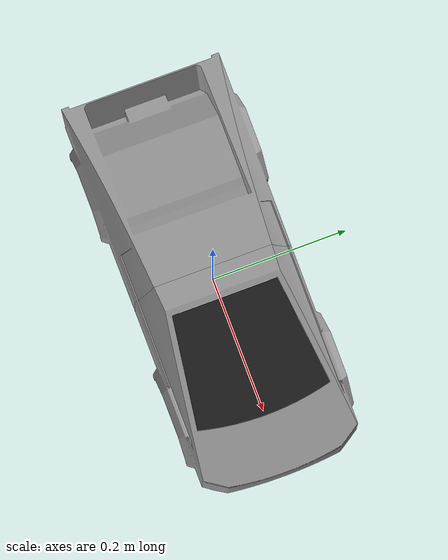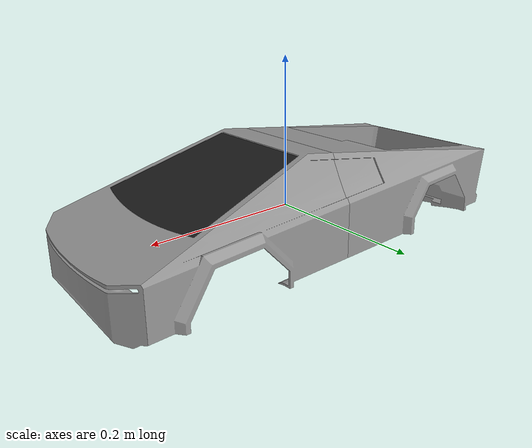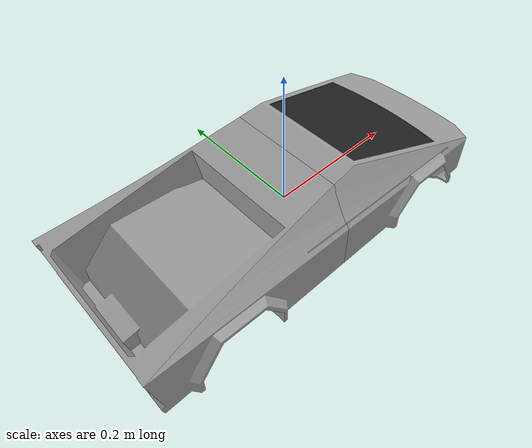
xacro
<?xml version="1.0"?>
<robot xmlns:xacro="http://www.ros.org/wiki/xacro">
     <!--
    comprimento 597.271 mm
    altura 138.91590 mm
    largura 250.382 mm
     -->

    <!-- Main body -->
    <link name="link_body">
        <!-- Body Front -->
        <visual>
            <geometry>
                <mesh filename="package://robot_description/meshes/body_front.stl" scale="1.0 1.0 1.0"/>
            </geometry>
            <material name="Grey"/>
        </visual>

        <!-- Body Rear -->
        <visual>
            <geometry>
                <mesh filename="package://robot_description/meshes/body_rear.stl" scale="1.0 1.0 1.0"/>
            </geometry>
            <material name="Grey"/>
        </visual>

        <!-- Body Window -->
        <visual>
            <geometry>
                <mesh filename="package://robot_description/meshes/body_front_window.stl" scale="1.0 1.0 1.0"/>
            </geometry>
            <material name="Black"/>
        </visual>

        <!-- Body Front -->
        <collision>
            <geometry>
                <mesh filename="package://robot_description/meshes/body_front.stl" scale="1.0 1.0 1.0"/>
            </geometry>
        </collision>

        <!-- Body Rear -->
        <collision>
            <geometry>
                <mesh filename="package://robot_description/meshes/body_rear.stl" scale="1.0 1.0 1.0"/>
            </geometry>
        </collision>

        <!-- Body Window -->
        <collision>
            <geometry>
                <mesh filename="package://robot_description/meshes/body_front_window.stl" scale="1.0 1.0 1.0"/>
            </geometry>
        </collision>

        <!-- Inertial -->
        <inertial>
            <origin xyz="0 0 -0.11" rpy="0 0 0" />
            <mass value="28.0" />
            <inertia ixx="0.1913" ixy="0.0" ixz="0.0" iyy="0.9787" iyz="0.0" izz="0.8774" />
        </inertial>
    </link>

</robot>
